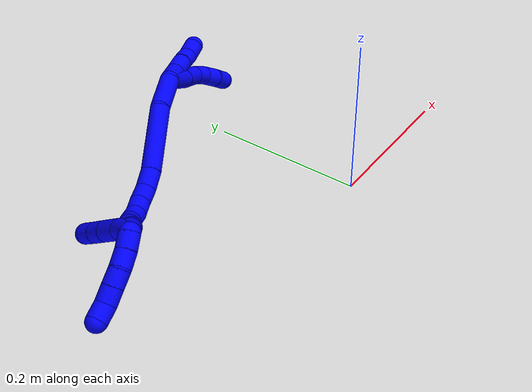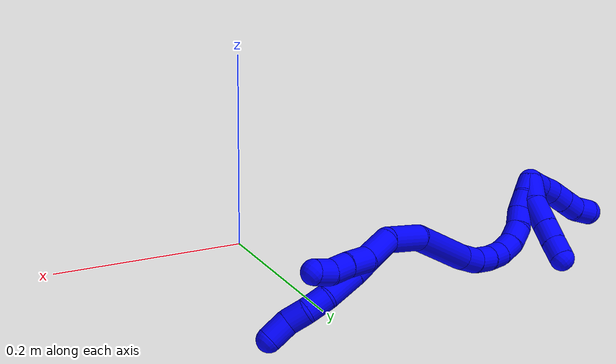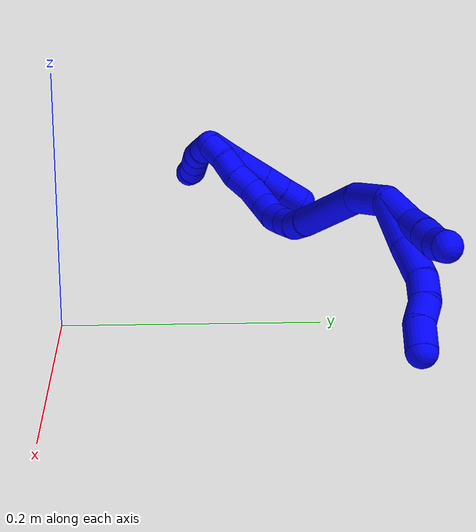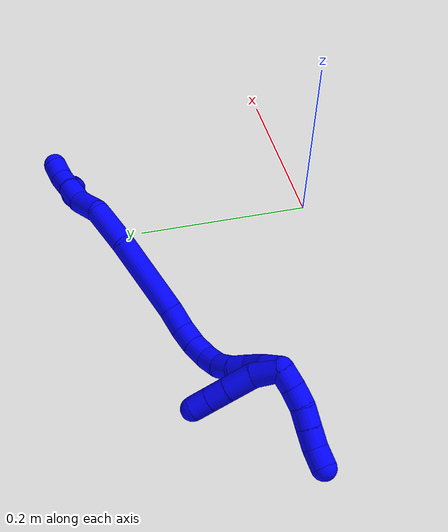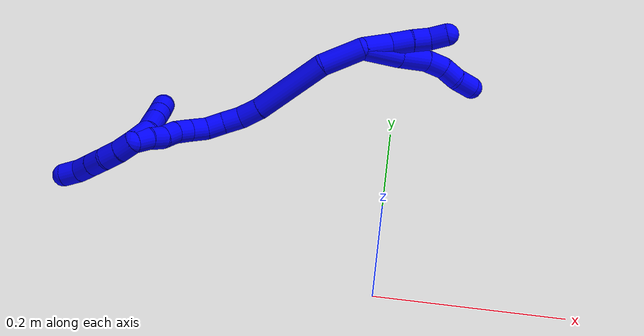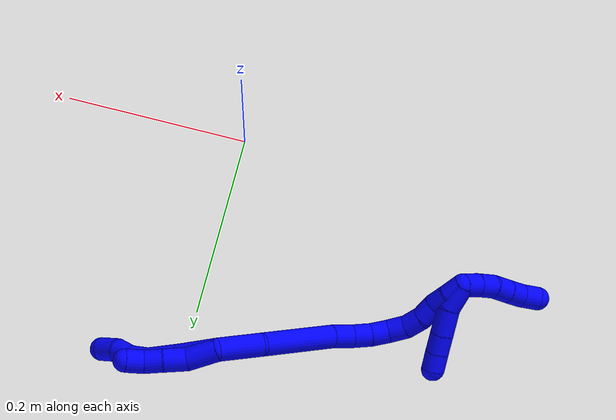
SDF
<sdf version="1.7">
 <world name="default">
  <model name="1">
   <static>0</static>
   <link name="1">
    <collision name="collision-cylinder-e_1_2_8">
     <pose>0.002042 3e-05 -0.023886 -3.14032 0.085286 -3.11182</pose>
     <geometry><cylinder><radius>0.0125</radius><length>0.047945</length></cylinder></geometry>
     <surface>
      <friction><ode><mu>1.16</mu><mu2>1.16</mu2><slip1>0</slip1><slip2>0</slip2></ode></friction>
      <contact><ode><kp>1e+06</kp><kd>1</kd><max_vel>0</max_vel><min_depth>0.001</min_depth></ode></contact>
     </surface>
    </collision>
    <visual name="visual-cylinder-e_1_2_8">
     <pose>0.002042 3e-05 -0.023886 -3.14032 0.085286 -3.11182</pose>
     <geometry><cylinder><radius>0.0125</radius><length>0.047945</length></cylinder></geometry>
     <material><ambient>0 0 1 1</ambient></material>
    </visual>
    <collision name="collision-cylinder-e_2_8_9">
     <pose>0.007211 -0.000536 -0.065163 3.10732 0.177765 2.76166</pose>
     <geometry><cylinder><radius>0.0125</radius><length>0.035362</length></cylinder></geometry>
     <surface>
      <friction><ode><mu>1.16</mu><mu2>1.16</mu2><slip1>0</slip1><slip2>0</slip2></ode></friction>
      <contact><ode><kp>1e+06</kp><kd>1</kd><max_vel>0</max_vel><min_depth>0.001</min_depth></ode></contact>
     </surface>
    </collision>
    <visual name="visual-cylinder-e_2_8_9">
     <pose>0.007211 -0.000536 -0.065163 3.10732 0.177765 2.76166</pose>
     <geometry><cylinder><radius>0.0125</radius><length>0.035362</length></cylinder></geometry>
     <material><ambient>0 0 1 1</ambient></material>
    </visual>
    <collision name="collision-cylinder-e_3_9_10">
     <pose>0.010529 -0.003783 -0.093695 2.90795 0.016764 0.142611</pose>
     <geometry><cylinder><radius>0.0125</radius><length>0.022905</length></cylinder></geometry>
     <surface>
      <friction><ode><mu>1.16</mu><mu2>1.16</mu2><slip1>0</slip1><slip2>0</slip2></ode></friction>
      <contact><ode><kp>1e+06</kp><kd>1</kd><max_vel>0</max_vel><min_depth>0.001</min_depth></ode></contact>
     </surface>
    </collision>
    <visual name="visual-cylinder-e_3_9_10">
     <pose>0.010529 -0.003783 -0.093695 2.90795 0.016764 0.142611</pose>
     <geometry><cylinder><radius>0.0125</radius><length>0.022905</length></cylinder></geometry>
     <material><ambient>0 0 1 1</ambient></material>
    </visual>
    <collision name="collision-cylinder-e_4_10_11">
     <pose>0.008613 -0.01085 -0.113751 2.68173 -0.208812 -0.841828</pose>
     <geometry><cylinder><radius>0.0125</radius><length>0.020341</length></cylinder></geometry>
     <surface>
      <friction><ode><mu>1.16</mu><mu2>1.16</mu2><slip1>0</slip1><slip2>0</slip2></ode></friction>
      <contact><ode><kp>1e+06</kp><kd>1</kd><max_vel>0</max_vel><min_depth>0.001</min_depth></ode></contact>
     </surface>
    </collision>
    <visual name="visual-cylinder-e_4_10_11">
     <pose>0.008613 -0.01085 -0.113751 2.68173 -0.208812 -0.841828</pose>
     <geometry><cylinder><radius>0.0125</radius><length>0.020341</length></cylinder></geometry>
     <material><ambient>0 0 1 1</ambient></material>
    </visual>
    <collision name="collision-cylinder-e_5_11_6">
     <pose>0.005011 -0.016979 -0.134168 2.99375 -0.127753 -1.4248</pose>
     <geometry><cylinder><radius>0.0125</radius><length>0.023447</length></cylinder></geometry>
     <surface>
      <friction><ode><mu>1.16</mu><mu2>1.16</mu2><slip1>0</slip1><slip2>0</slip2></ode></friction>
      <contact><ode><kp>1e+06</kp><kd>1</kd><max_vel>0</max_vel><min_depth>0.001</min_depth></ode></contact>
     </surface>
    </collision>
    <visual name="visual-cylinder-e_5_11_6">
     <pose>0.005011 -0.016979 -0.134168 2.99375 -0.127753 -1.4248</pose>
     <geometry><cylinder><radius>0.0125</radius><length>0.023447</length></cylinder></geometry>
     <material><ambient>0 0 1 1</ambient></material>
    </visual>
    <collision name="collision-cylinder-e_1_2_12">
     <pose>0.00634 0.002098 -0.015583 -3.00778 0.383298 -2.47655</pose>
     <geometry><cylinder><radius>0.0125</radius><length>0.033907</length></cylinder></geometry>
     <surface>
      <friction><ode><mu>1.16</mu><mu2>1.16</mu2><slip1>0</slip1><slip2>0</slip2></ode></friction>
      <contact><ode><kp>1e+06</kp><kd>1</kd><max_vel>0</max_vel><min_depth>0.001</min_depth></ode></contact>
     </surface>
    </collision>
    <visual name="visual-cylinder-e_1_2_12">
     <pose>0.00634 0.002098 -0.015583 -3.00778 0.383298 -2.47655</pose>
     <geometry><cylinder><radius>0.0125</radius><length>0.033907</length></cylinder></geometry>
     <material><ambient>0 0 1 1</ambient></material>
    </visual>
    <collision name="collision-cylinder-e_2_12_13">
     <pose>0.019915 0.002518 -0.041512 2.98087 0.604143 2.63575</pose>
     <geometry><cylinder><radius>0.0125</radius><length>0.025472</length></cylinder></geometry>
     <surface>
      <friction><ode><mu>1.16</mu><mu2>1.16</mu2><slip1>0</slip1><slip2>0</slip2></ode></friction>
      <contact><ode><kp>1e+06</kp><kd>1</kd><max_vel>0</max_vel><min_depth>0.001</min_depth></ode></contact>
     </surface>
    </collision>
    <visual name="visual-cylinder-e_2_12_13">
     <pose>0.019915 0.002518 -0.041512 2.98087 0.604143 2.63575</pose>
     <geometry><cylinder><radius>0.0125</radius><length>0.025472</length></cylinder></geometry>
     <material><ambient>0 0 1 1</ambient></material>
    </visual>
    <collision name="collision-cylinder-e_3_13_14">
     <pose>0.032011 -0.000357 -0.060675 3.00654 0.499991 2.62376</pose>
     <geometry><cylinder><radius>0.0125</radius><length>0.020278</length></cylinder></geometry>
     <surface>
      <friction><ode><mu>1.16</mu><mu2>1.16</mu2><slip1>0</slip1><slip2>0</slip2></ode></friction>
      <contact><ode><kp>1e+06</kp><kd>1</kd><max_vel>0</max_vel><min_depth>0.001</min_depth></ode></contact>
     </surface>
    </collision>
    <visual name="visual-cylinder-e_3_13_14">
     <pose>0.032011 -0.000357 -0.060675 3.00654 0.499991 2.62376</pose>
     <geometry><cylinder><radius>0.0125</radius><length>0.020278</length></cylinder></geometry>
     <material><ambient>0 0 1 1</ambient></material>
    </visual>
    <collision name="collision-cylinder-e_4_14_5">
     <pose>0.043923 -0.004221 -0.076321 2.7695 0.765962 2.26747</pose>
     <geometry><cylinder><radius>0.0125</radius><length>0.020343</length></cylinder></geometry>
     <surface>
      <friction><ode><mu>1.16</mu><mu2>1.16</mu2><slip1>0</slip1><slip2>0</slip2></ode></friction>
      <contact><ode><kp>1e+06</kp><kd>1</kd><max_vel>0</max_vel><min_depth>0.001</min_depth></ode></contact>
     </surface>
    </collision>
    <visual name="visual-cylinder-e_4_14_5">
     <pose>0.043923 -0.004221 -0.076321 2.7695 0.765962 2.26747</pose>
     <geometry><cylinder><radius>0.0125</radius><length>0.020343</length></cylinder></geometry>
     <material><ambient>0 0 1 1</ambient></material>
    </visual>
    <collision name="collision-cylinder-e_1_2_15">
     <pose>-0.017814 0.00214 0.015903 -0.133765 -0.837577 0.059613</pose>
     <geometry><cylinder><radius>0.0125</radius><length>0.047951</length></cylinder></geometry>
     <surface>
      <friction><ode><mu>1.16</mu><mu2>1.16</mu2><slip1>0</slip1><slip2>0</slip2></ode></friction>
      <contact><ode><kp>1e+06</kp><kd>1</kd><max_vel>0</max_vel><min_depth>0.001</min_depth></ode></contact>
     </surface>
    </collision>
    <visual name="visual-cylinder-e_1_2_15">
     <pose>-0.017814 0.00214 0.015903 -0.133765 -0.837577 0.059613</pose>
     <geometry><cylinder><radius>0.0125</radius><length>0.047951</length></cylinder></geometry>
     <material><ambient>0 0 1 1</ambient></material>
    </visual>
    <collision name="collision-cylinder-e_2_15_16">
     <pose>-0.074821 0.008516 0.049789 -0.231329 -1.13028 0.147085</pose>
     <geometry><cylinder><radius>0.0125</radius><length>0.086659</length></cylinder></geometry>
     <surface>
      <friction><ode><mu>1.16</mu><mu2>1.16</mu2><slip1>0</slip1><slip2>0</slip2></ode></friction>
      <contact><ode><kp>1e+06</kp><kd>1</kd><max_vel>0</max_vel><min_depth>0.001</min_depth></ode></contact>
     </surface>
    </collision>
    <visual name="visual-cylinder-e_2_15_16">
     <pose>-0.074821 0.008516 0.049789 -0.231329 -1.13028 0.147085</pose>
     <geometry><cylinder><radius>0.0125</radius><length>0.086659</length></cylinder></geometry>
     <material><ambient>0 0 1 1</ambient></material>
    </visual>
    <collision name="collision-cylinder-e_3_16_17">
     <pose>-0.124357 0.015048 0.074062 -0.350027 -0.996305 0.19176</pose>
     <geometry><cylinder><radius>0.0125</radius><length>0.024643</length></cylinder></geometry>
     <surface>
      <friction><ode><mu>1.16</mu><mu2>1.16</mu2><slip1>0</slip1><slip2>0</slip2></ode></friction>
      <contact><ode><kp>1e+06</kp><kd>1</kd><max_vel>0</max_vel><min_depth>0.001</min_depth></ode></contact>
     </surface>
    </collision>
    <visual name="visual-cylinder-e_3_16_17">
     <pose>-0.124357 0.015048 0.074062 -0.350027 -0.996305 0.19176</pose>
     <geometry><cylinder><radius>0.0125</radius><length>0.024643</length></cylinder></geometry>
     <material><ambient>0 0 1 1</ambient></material>
    </visual>
    <collision name="collision-cylinder-e_4_17_18">
     <pose>-0.141784 0.018638 0.087796 -0.172157 -0.753153 0.068221</pose>
     <geometry><cylinder><radius>0.0125</radius><length>0.020713</length></cylinder></geometry>
     <surface>
      <friction><ode><mu>1.16</mu><mu2>1.16</mu2><slip1>0</slip1><slip2>0</slip2></ode></friction>
      <contact><ode><kp>1e+06</kp><kd>1</kd><max_vel>0</max_vel><min_depth>0.001</min_depth></ode></contact>
     </surface>
    </collision>
    <visual name="visual-cylinder-e_4_17_18">
     <pose>-0.141784 0.018638 0.087796 -0.172157 -0.753153 0.068221</pose>
     <geometry><cylinder><radius>0.0125</radius><length>0.020713</length></cylinder></geometry>
     <material><ambient>0 0 1 1</ambient></material>
    </visual>
    <collision name="collision-cylinder-e_5_18_19">
     <pose>-0.15521 0.019905 0.102975 0.003534 -0.686801 -0.001264</pose>
     <geometry><cylinder><radius>0.0125</radius><length>0.020006</length></cylinder></geometry>
     <surface>
      <friction><ode><mu>1.16</mu><mu2>1.16</mu2><slip1>0</slip1><slip2>0</slip2></ode></friction>
      <contact><ode><kp>1e+06</kp><kd>1</kd><max_vel>0</max_vel><min_depth>0.001</min_depth></ode></contact>
     </surface>
    </collision>
    <visual name="visual-cylinder-e_5_18_19">
     <pose>-0.15521 0.019905 0.102975 0.003534 -0.686801 -0.001264</pose>
     <geometry><cylinder><radius>0.0125</radius><length>0.020006</length></cylinder></geometry>
     <material><ambient>0 0 1 1</ambient></material>
    </visual>
    <collision name="collision-cylinder-e_6_19_20">
     <pose>-0.164941 0.019094 0.120089 0.083378 -0.345583 -0.01456</pose>
     <geometry><cylinder><radius>0.0125</radius><length>0.020007</length></cylinder></geometry>
     <surface>
      <friction><ode><mu>1.16</mu><mu2>1.16</mu2><slip1>0</slip1><slip2>0</slip2></ode></friction>
      <contact><ode><kp>1e+06</kp><kd>1</kd><max_vel>0</max_vel><min_depth>0.001</min_depth></ode></contact>
     </surface>
    </collision>
    <visual name="visual-cylinder-e_6_19_20">
     <pose>-0.164941 0.019094 0.120089 0.083378 -0.345583 -0.01456</pose>
     <geometry><cylinder><radius>0.0125</radius><length>0.020007</length></cylinder></geometry>
     <material><ambient>0 0 1 1</ambient></material>
    </visual>
    <collision name="collision-cylinder-e_7_20_21">
     <pose>-0.169798 0.014988 0.138794 0.342234 -0.14721 -0.025484</pose>
     <geometry><cylinder><radius>0.0125</radius><length>0.020015</length></cylinder></geometry>
     <surface>
      <friction><ode><mu>1.16</mu><mu2>1.16</mu2><slip1>0</slip1><slip2>0</slip2></ode></friction>
      <contact><ode><kp>1e+06</kp><kd>1</kd><max_vel>0</max_vel><min_depth>0.001</min_depth></ode></contact>
     </surface>
    </collision>
    <visual name="visual-cylinder-e_7_20_21">
     <pose>-0.169798 0.014988 0.138794 0.342234 -0.14721 -0.025484</pose>
     <geometry><cylinder><radius>0.0125</radius><length>0.020015</length></cylinder></geometry>
     <material><ambient>0 0 1 1</ambient></material>
    </visual>
    <collision name="collision-cylinder-e_8_21_22">
     <pose>-0.172698 0.005953 0.156201 0.615393 -0.143774 -0.045761</pose>
     <geometry><cylinder><radius>0.0125</radius><length>0.020001</length></cylinder></geometry>
     <surface>
      <friction><ode><mu>1.16</mu><mu2>1.16</mu2><slip1>0</slip1><slip2>0</slip2></ode></friction>
      <contact><ode><kp>1e+06</kp><kd>1</kd><max_vel>0</max_vel><min_depth>0.001</min_depth></ode></contact>
     </surface>
    </collision>
    <visual name="visual-cylinder-e_8_21_22">
     <pose>-0.172698 0.005953 0.156201 0.615393 -0.143774 -0.045761</pose>
     <geometry><cylinder><radius>0.0125</radius><length>0.020001</length></cylinder></geometry>
     <material><ambient>0 0 1 1</ambient></material>
    </visual>
    <collision name="collision-cylinder-e_9_22_23">
     <pose>-0.174112 -0.003608 0.173513 0.394861 0.001939 0.000388</pose>
     <geometry><cylinder><radius>0.0125</radius><length>0.020001</length></cylinder></geometry>
     <surface>
      <friction><ode><mu>1.16</mu><mu2>1.16</mu2><slip1>0</slip1><slip2>0</slip2></ode></friction>
      <contact><ode><kp>1e+06</kp><kd>1</kd><max_vel>0</max_vel><min_depth>0.001</min_depth></ode></contact>
     </surface>
    </collision>
    <visual name="visual-cylinder-e_9_22_23">
     <pose>-0.174112 -0.003608 0.173513 0.394861 0.001939 0.000388</pose>
     <geometry><cylinder><radius>0.0125</radius><length>0.020001</length></cylinder></geometry>
     <material><ambient>0 0 1 1</ambient></material>
    </visual>
    <collision name="collision-cylinder-e_10_23_1">
     <pose>-0.175857 -0.01164 0.191656 0.439023 -0.177383 -0.039674</pose>
     <geometry><cylinder><radius>0.0125</radius><length>0.020005</length></cylinder></geometry>
     <surface>
      <friction><ode><mu>1.16</mu><mu2>1.16</mu2><slip1>0</slip1><slip2>0</slip2></ode></friction>
      <contact><ode><kp>1e+06</kp><kd>1</kd><max_vel>0</max_vel><min_depth>0.001</min_depth></ode></contact>
     </surface>
    </collision>
    <visual name="visual-cylinder-e_10_23_1">
     <pose>-0.175857 -0.01164 0.191656 0.439023 -0.177383 -0.039674</pose>
     <geometry><cylinder><radius>0.0125</radius><length>0.020005</length></cylinder></geometry>
     <material><ambient>0 0 1 1</ambient></material>
    </visual>
    <collision name="collision-cylinder-e_1_1_24">
     <pose>-0.186671 -0.014124 0.20447 -0.410867 -1.13106 0.262975</pose>
     <geometry><cylinder><radius>0.0125</radius><length>0.02</length></cylinder></geometry>
     <surface>
      <friction><ode><mu>1.16</mu><mu2>1.16</mu2><slip1>0</slip1><slip2>0</slip2></ode></friction>
      <contact><ode><kp>1e+06</kp><kd>1</kd><max_vel>0</max_vel><min_depth>0.001</min_depth></ode></contact>
     </surface>
    </collision>
    <visual name="visual-cylinder-e_1_1_24">
     <pose>-0.186671 -0.014124 0.20447 -0.410867 -1.13106 0.262975</pose>
     <geometry><cylinder><radius>0.0125</radius><length>0.02</length></cylinder></geometry>
     <material><ambient>0 0 1 1</ambient></material>
    </visual>
    <collision name="collision-cylinder-e_2_24_25">
     <pose>-0.204302 -0.009804 0.212786 -0.535812 -1.0318 0.308881</pose>
     <geometry><cylinder><radius>0.0125</radius><length>0.02</length></cylinder></geometry>
     <surface>
      <friction><ode><mu>1.16</mu><mu2>1.16</mu2><slip1>0</slip1><slip2>0</slip2></ode></friction>
      <contact><ode><kp>1e+06</kp><kd>1</kd><max_vel>0</max_vel><min_depth>0.001</min_depth></ode></contact>
     </surface>
    </collision>
    <visual name="visual-cylinder-e_2_24_25">
     <pose>-0.204302 -0.009804 0.212786 -0.535812 -1.0318 0.308881</pose>
     <geometry><cylinder><radius>0.0125</radius><length>0.02</length></cylinder></geometry>
     <material><ambient>0 0 1 1</ambient></material>
    </visual>
    <collision name="collision-cylinder-e_3_25_26">
     <pose>-0.221451 -0.003033 0.220264 -0.934836 -1.02872 0.555681</pose>
     <geometry><cylinder><radius>0.0125</radius><length>0.02</length></cylinder></geometry>
     <surface>
      <friction><ode><mu>1.16</mu><mu2>1.16</mu2><slip1>0</slip1><slip2>0</slip2></ode></friction>
      <contact><ode><kp>1e+06</kp><kd>1</kd><max_vel>0</max_vel><min_depth>0.001</min_depth></ode></contact>
     </surface>
    </collision>
    <visual name="visual-cylinder-e_3_25_26">
     <pose>-0.221451 -0.003033 0.220264 -0.934836 -1.02872 0.555681</pose>
     <geometry><cylinder><radius>0.0125</radius><length>0.02</length></cylinder></geometry>
     <material><ambient>0 0 1 1</ambient></material>
    </visual>
    <collision name="collision-cylinder-e_4_26_27">
     <pose>-0.238608 0.005174 0.22645 -0.914918 -1.03346 0.545517</pose>
     <geometry><cylinder><radius>0.0125</radius><length>0.02</length></cylinder></geometry>
     <surface>
      <friction><ode><mu>1.16</mu><mu2>1.16</mu2><slip1>0</slip1><slip2>0</slip2></ode></friction>
      <contact><ode><kp>1e+06</kp><kd>1</kd><max_vel>0</max_vel><min_depth>0.001</min_depth></ode></contact>
     </surface>
    </collision>
    <visual name="visual-cylinder-e_4_26_27">
     <pose>-0.238608 0.005174 0.22645 -0.914918 -1.03346 0.545517</pose>
     <geometry><cylinder><radius>0.0125</radius><length>0.02</length></cylinder></geometry>
     <material><ambient>0 0 1 1</ambient></material>
    </visual>
    <collision name="collision-cylinder-e_5_27_4">
     <pose>-0.254698 0.012707 0.235199 -0.553238 -0.848017 0.254907</pose>
     <geometry><cylinder><radius>0.0125</radius><length>0.02</length></cylinder></geometry>
     <surface>
      <friction><ode><mu>1.16</mu><mu2>1.16</mu2><slip1>0</slip1><slip2>0</slip2></ode></friction>
      <contact><ode><kp>1e+06</kp><kd>1</kd><max_vel>0</max_vel><min_depth>0.001</min_depth></ode></contact>
     </surface>
    </collision>
    <visual name="visual-cylinder-e_5_27_4">
     <pose>-0.254698 0.012707 0.235199 -0.553238 -0.848017 0.254907</pose>
     <geometry><cylinder><radius>0.0125</radius><length>0.02</length></cylinder></geometry>
     <material><ambient>0 0 1 1</ambient></material>
    </visual>
    <collision name="collision-cylinder-e_1_1_28">
     <pose>-0.175608 -0.005243 0.190799 -2.31625 0.139001 -0.315365</pose>
     <geometry><cylinder><radius>0.0125</radius><length>0.029081</length></cylinder></geometry>
     <surface>
      <friction><ode><mu>1.16</mu><mu2>1.16</mu2><slip1>0</slip1><slip2>0</slip2></ode></friction>
      <contact><ode><kp>1e+06</kp><kd>1</kd><max_vel>0</max_vel><min_depth>0.001</min_depth></ode></contact>
     </surface>
    </collision>
    <visual name="visual-cylinder-e_1_1_28">
     <pose>-0.175608 -0.005243 0.190799 -2.31625 0.139001 -0.315365</pose>
     <geometry><cylinder><radius>0.0125</radius><length>0.029081</length></cylinder></geometry>
     <material><ambient>0 0 1 1</ambient></material>
    </visual>
    <collision name="collision-cylinder-e_2_28_29">
     <pose>-0.173862 0.018293 0.174083 -2.06312 -0.018274 0.030538</pose>
     <geometry><cylinder><radius>0.0125</radius><length>0.029407</length></cylinder></geometry>
     <surface>
      <friction><ode><mu>1.16</mu><mu2>1.16</mu2><slip1>0</slip1><slip2>0</slip2></ode></friction>
      <contact><ode><kp>1e+06</kp><kd>1</kd><max_vel>0</max_vel><min_depth>0.001</min_depth></ode></contact>
     </surface>
    </collision>
    <visual name="visual-cylinder-e_2_28_29">
     <pose>-0.173862 0.018293 0.174083 -2.06312 -0.018274 0.030538</pose>
     <geometry><cylinder><radius>0.0125</radius><length>0.029407</length></cylinder></geometry>
     <material><ambient>0 0 1 1</ambient></material>
    </visual>
    <collision name="collision-cylinder-e_3_29_30">
     <pose>-0.174429 0.040644 0.161945 -2.07534 -0.027777 0.047064</pose>
     <geometry><cylinder><radius>0.0125</radius><length>0.021476</length></cylinder></geometry>
     <surface>
      <friction><ode><mu>1.16</mu><mu2>1.16</mu2><slip1>0</slip1><slip2>0</slip2></ode></friction>
      <contact><ode><kp>1e+06</kp><kd>1</kd><max_vel>0</max_vel><min_depth>0.001</min_depth></ode></contact>
     </surface>
    </collision>
    <visual name="visual-cylinder-e_3_29_30">
     <pose>-0.174429 0.040644 0.161945 -2.07534 -0.027777 0.047064</pose>
     <geometry><cylinder><radius>0.0125</radius><length>0.021476</length></cylinder></geometry>
     <material><ambient>0 0 1 1</ambient></material>
    </visual>
    <collision name="collision-cylinder-e_4_30_3">
     <pose>-0.174814 0.058942 0.152162 -2.04722 -0.008679 0.014245</pose>
     <geometry><cylinder><radius>0.0125</radius><length>0.020036</length></cylinder></geometry>
     <surface>
      <friction><ode><mu>1.16</mu><mu2>1.16</mu2><slip1>0</slip1><slip2>0</slip2></ode></friction>
      <contact><ode><kp>1e+06</kp><kd>1</kd><max_vel>0</max_vel><min_depth>0.001</min_depth></ode></contact>
     </surface>
    </collision>
    <visual name="visual-cylinder-e_4_30_3">
     <pose>-0.174814 0.058942 0.152162 -2.04722 -0.008679 0.014245</pose>
     <geometry><cylinder><radius>0.0125</radius><length>0.020036</length></cylinder></geometry>
     <material><ambient>0 0 1 1</ambient></material>
    </visual>
    <collision name="collision-sphere-3">
     <pose>-0.174901 0.067844 0.147568 0 -0 0</pose>
     <geometry><sphere><radius>0.0125</radius></sphere></geometry>
     <surface>
      <friction><ode><mu>1.16</mu><mu2>1.16</mu2><slip1>0</slip1><slip2>0</slip2></ode></friction>
      <contact><ode><kp>1e+06</kp><kd>1</kd><max_vel>0</max_vel><min_depth>0.001</min_depth></ode></contact>
     </surface>
    </collision>
    <visual name="visual-sphere-3">
     <pose>-0.174901 0.067844 0.147568 0 -0 0</pose>
     <geometry><sphere><radius>0.0125</radius></sphere></geometry>
     <material><ambient>0 0 1 1</ambient></material>
    </visual>
    <collision name="collision-sphere-30">
     <pose>-0.174727 0.05004 0.156756 0 -0 0</pose>
     <geometry><sphere><radius>0.0125</radius></sphere></geometry>
     <surface>
      <friction><ode><mu>1.16</mu><mu2>1.16</mu2><slip1>0</slip1><slip2>0</slip2></ode></friction>
      <contact><ode><kp>1e+06</kp><kd>1</kd><max_vel>0</max_vel><min_depth>0.001</min_depth></ode></contact>
     </surface>
    </collision>
    <visual name="visual-sphere-30">
     <pose>-0.174727 0.05004 0.156756 0 -0 0</pose>
     <geometry><sphere><radius>0.0125</radius></sphere></geometry>
     <material><ambient>0 0 1 1</ambient></material>
    </visual>
    <collision name="collision-sphere-29">
     <pose>-0.17413 0.031248 0.167134 0 -0 0</pose>
     <geometry><sphere><radius>0.0125</radius></sphere></geometry>
     <surface>
      <friction><ode><mu>1.16</mu><mu2>1.16</mu2><slip1>0</slip1><slip2>0</slip2></ode></friction>
      <contact><ode><kp>1e+06</kp><kd>1</kd><max_vel>0</max_vel><min_depth>0.001</min_depth></ode></contact>
     </surface>
    </collision>
    <visual name="visual-sphere-29">
     <pose>-0.17413 0.031248 0.167134 0 -0 0</pose>
     <geometry><sphere><radius>0.0125</radius></sphere></geometry>
     <material><ambient>0 0 1 1</ambient></material>
    </visual>
    <collision name="collision-sphere-28">
     <pose>-0.173593 0.005338 0.181031 0 -0 0</pose>
     <geometry><sphere><radius>0.0125</radius></sphere></geometry>
     <surface>
      <friction><ode><mu>1.16</mu><mu2>1.16</mu2><slip1>0</slip1><slip2>0</slip2></ode></friction>
      <contact><ode><kp>1e+06</kp><kd>1</kd><max_vel>0</max_vel><min_depth>0.001</min_depth></ode></contact>
     </surface>
    </collision>
    <visual name="visual-sphere-28">
     <pose>-0.173593 0.005338 0.181031 0 -0 0</pose>
     <geometry><sphere><radius>0.0125</radius></sphere></geometry>
     <material><ambient>0 0 1 1</ambient></material>
    </visual>
    <collision name="collision-sphere-4">
     <pose>-0.262198 0.016182 0.240827 0 -0 0</pose>
     <geometry><sphere><radius>0.0125</radius></sphere></geometry>
     <surface>
      <friction><ode><mu>1.16</mu><mu2>1.16</mu2><slip1>0</slip1><slip2>0</slip2></ode></friction>
      <contact><ode><kp>1e+06</kp><kd>1</kd><max_vel>0</max_vel><min_depth>0.001</min_depth></ode></contact>
     </surface>
    </collision>
    <visual name="visual-sphere-4">
     <pose>-0.262198 0.016182 0.240827 0 -0 0</pose>
     <geometry><sphere><radius>0.0125</radius></sphere></geometry>
     <material><ambient>0 0 1 1</ambient></material>
    </visual>
    <collision name="collision-sphere-27">
     <pose>-0.247198 0.009231 0.229571 0 -0 0</pose>
     <geometry><sphere><radius>0.0125</radius></sphere></geometry>
     <surface>
      <friction><ode><mu>1.16</mu><mu2>1.16</mu2><slip1>0</slip1><slip2>0</slip2></ode></friction>
      <contact><ode><kp>1e+06</kp><kd>1</kd><max_vel>0</max_vel><min_depth>0.001</min_depth></ode></contact>
     </surface>
    </collision>
    <visual name="visual-sphere-27">
     <pose>-0.247198 0.009231 0.229571 0 -0 0</pose>
     <geometry><sphere><radius>0.0125</radius></sphere></geometry>
     <material><ambient>0 0 1 1</ambient></material>
    </visual>
    <collision name="collision-sphere-26">
     <pose>-0.230017 0.001118 0.223328 0 -0 0</pose>
     <geometry><sphere><radius>0.0125</radius></sphere></geometry>
     <surface>
      <friction><ode><mu>1.16</mu><mu2>1.16</mu2><slip1>0</slip1><slip2>0</slip2></ode></friction>
      <contact><ode><kp>1e+06</kp><kd>1</kd><max_vel>0</max_vel><min_depth>0.001</min_depth></ode></contact>
     </surface>
    </collision>
    <visual name="visual-sphere-26">
     <pose>-0.230017 0.001118 0.223328 0 -0 0</pose>
     <geometry><sphere><radius>0.0125</radius></sphere></geometry>
     <material><ambient>0 0 1 1</ambient></material>
    </visual>
    <collision name="collision-sphere-25">
     <pose>-0.212884 -0.007183 0.2172 0 -0 0</pose>
     <geometry><sphere><radius>0.0125</radius></sphere></geometry>
     <surface>
      <friction><ode><mu>1.16</mu><mu2>1.16</mu2><slip1>0</slip1><slip2>0</slip2></ode></friction>
      <contact><ode><kp>1e+06</kp><kd>1</kd><max_vel>0</max_vel><min_depth>0.001</min_depth></ode></contact>
     </surface>
    </collision>
    <visual name="visual-sphere-25">
     <pose>-0.212884 -0.007183 0.2172 0 -0 0</pose>
     <geometry><sphere><radius>0.0125</radius></sphere></geometry>
     <material><ambient>0 0 1 1</ambient></material>
    </visual>
    <collision name="collision-sphere-24">
     <pose>-0.19572 -0.012424 0.208373 0 -0 0</pose>
     <geometry><sphere><radius>0.0125</radius></sphere></geometry>
     <surface>
      <friction><ode><mu>1.16</mu><mu2>1.16</mu2><slip1>0</slip1><slip2>0</slip2></ode></friction>
      <contact><ode><kp>1e+06</kp><kd>1</kd><max_vel>0</max_vel><min_depth>0.001</min_depth></ode></contact>
     </surface>
    </collision>
    <visual name="visual-sphere-24">
     <pose>-0.19572 -0.012424 0.208373 0 -0 0</pose>
     <geometry><sphere><radius>0.0125</radius></sphere></geometry>
     <material><ambient>0 0 1 1</ambient></material>
    </visual>
    <collision name="collision-sphere-1">
     <pose>-0.177622 -0.015825 0.200567 0 -0 0</pose>
     <geometry><sphere><radius>0.0125</radius></sphere></geometry>
     <surface>
      <friction><ode><mu>1.16</mu><mu2>1.16</mu2><slip1>0</slip1><slip2>0</slip2></ode></friction>
      <contact><ode><kp>1e+06</kp><kd>1</kd><max_vel>0</max_vel><min_depth>0.001</min_depth></ode></contact>
     </surface>
    </collision>
    <visual name="visual-sphere-1">
     <pose>-0.177622 -0.015825 0.200567 0 -0 0</pose>
     <geometry><sphere><radius>0.0125</radius></sphere></geometry>
     <material><ambient>0 0 1 1</ambient></material>
    </visual>
    <collision name="collision-sphere-23">
     <pose>-0.174092 -0.007455 0.182744 0 -0 0</pose>
     <geometry><sphere><radius>0.0125</radius></sphere></geometry>
     <surface>
      <friction><ode><mu>1.16</mu><mu2>1.16</mu2><slip1>0</slip1><slip2>0</slip2></ode></friction>
      <contact><ode><kp>1e+06</kp><kd>1</kd><max_vel>0</max_vel><min_depth>0.001</min_depth></ode></contact>
     </surface>
    </collision>
    <visual name="visual-sphere-23">
     <pose>-0.174092 -0.007455 0.182744 0 -0 0</pose>
     <geometry><sphere><radius>0.0125</radius></sphere></geometry>
     <material><ambient>0 0 1 1</ambient></material>
    </visual>
    <collision name="collision-sphere-22">
     <pose>-0.174131 0.000239 0.164282 0 -0 0</pose>
     <geometry><sphere><radius>0.0125</radius></sphere></geometry>
     <surface>
      <friction><ode><mu>1.16</mu><mu2>1.16</mu2><slip1>0</slip1><slip2>0</slip2></ode></friction>
      <contact><ode><kp>1e+06</kp><kd>1</kd><max_vel>0</max_vel><min_depth>0.001</min_depth></ode></contact>
     </surface>
    </collision>
    <visual name="visual-sphere-22">
     <pose>-0.174131 0.000239 0.164282 0 -0 0</pose>
     <geometry><sphere><radius>0.0125</radius></sphere></geometry>
     <material><ambient>0 0 1 1</ambient></material>
    </visual>
    <collision name="collision-sphere-21">
     <pose>-0.171265 0.011666 0.148119 0 -0 0</pose>
     <geometry><sphere><radius>0.0125</radius></sphere></geometry>
     <surface>
      <friction><ode><mu>1.16</mu><mu2>1.16</mu2><slip1>0</slip1><slip2>0</slip2></ode></friction>
      <contact><ode><kp>1e+06</kp><kd>1</kd><max_vel>0</max_vel><min_depth>0.001</min_depth></ode></contact>
     </surface>
    </collision>
    <visual name="visual-sphere-21">
     <pose>-0.171265 0.011666 0.148119 0 -0 0</pose>
     <geometry><sphere><radius>0.0125</radius></sphere></geometry>
     <material><ambient>0 0 1 1</ambient></material>
    </visual>
    <collision name="collision-sphere-6">
     <pose>0.003517 -0.018691 -0.145669 0 -0 0</pose>
     <geometry><sphere><radius>0.0125</radius></sphere></geometry>
     <surface>
      <friction><ode><mu>1.16</mu><mu2>1.16</mu2><slip1>0</slip1><slip2>0</slip2></ode></friction>
      <contact><ode><kp>1e+06</kp><kd>1</kd><max_vel>0</max_vel><min_depth>0.001</min_depth></ode></contact>
     </surface>
    </collision>
    <visual name="visual-sphere-6">
     <pose>0.003517 -0.018691 -0.145669 0 -0 0</pose>
     <geometry><sphere><radius>0.0125</radius></sphere></geometry>
     <material><ambient>0 0 1 1</ambient></material>
    </visual>
    <collision name="collision-sphere-11">
     <pose>0.006505 -0.015266 -0.122666 0 -0 0</pose>
     <geometry><sphere><radius>0.0125</radius></sphere></geometry>
     <surface>
      <friction><ode><mu>1.16</mu><mu2>1.16</mu2><slip1>0</slip1><slip2>0</slip2></ode></friction>
      <contact><ode><kp>1e+06</kp><kd>1</kd><max_vel>0</max_vel><min_depth>0.001</min_depth></ode></contact>
     </surface>
    </collision>
    <visual name="visual-sphere-11">
     <pose>0.006505 -0.015266 -0.122666 0 -0 0</pose>
     <geometry><sphere><radius>0.0125</radius></sphere></geometry>
     <material><ambient>0 0 1 1</ambient></material>
    </visual>
    <collision name="collision-sphere-10">
     <pose>0.010721 -0.006434 -0.104835 0 -0 0</pose>
     <geometry><sphere><radius>0.0125</radius></sphere></geometry>
     <surface>
      <friction><ode><mu>1.16</mu><mu2>1.16</mu2><slip1>0</slip1><slip2>0</slip2></ode></friction>
      <contact><ode><kp>1e+06</kp><kd>1</kd><max_vel>0</max_vel><min_depth>0.001</min_depth></ode></contact>
     </surface>
    </collision>
    <visual name="visual-sphere-10">
     <pose>0.010721 -0.006434 -0.104835 0 -0 0</pose>
     <geometry><sphere><radius>0.0125</radius></sphere></geometry>
     <material><ambient>0 0 1 1</ambient></material>
    </visual>
    <collision name="collision-sphere-9">
     <pose>0.010337 -0.001132 -0.082555 0 -0 0</pose>
     <geometry><sphere><radius>0.0125</radius></sphere></geometry>
     <surface>
      <friction><ode><mu>1.16</mu><mu2>1.16</mu2><slip1>0</slip1><slip2>0</slip2></ode></friction>
      <contact><ode><kp>1e+06</kp><kd>1</kd><max_vel>0</max_vel><min_depth>0.001</min_depth></ode></contact>
     </surface>
    </collision>
    <visual name="visual-sphere-9">
     <pose>0.010337 -0.001132 -0.082555 0 -0 0</pose>
     <geometry><sphere><radius>0.0125</radius></sphere></geometry>
     <material><ambient>0 0 1 1</ambient></material>
    </visual>
    <collision name="collision-sphere-2">
     <geometry><sphere><radius>0.0125</radius></sphere></geometry>
     <surface>
      <friction><ode><mu>1.16</mu><mu2>1.16</mu2><slip1>0</slip1><slip2>0</slip2></ode></friction>
      <contact><ode><kp>1e+06</kp><kd>1</kd><max_vel>0</max_vel><min_depth>0.001</min_depth></ode></contact>
     </surface>
    </collision>
    <visual name="visual-sphere-2">
     <geometry><sphere><radius>0.0125</radius></sphere></geometry>
     <material><ambient>0 0 1 1</ambient></material>
    </visual>
    <collision name="collision-sphere-19">
     <pose>-0.161552 0.019878 0.11071 0 -0 0</pose>
     <geometry><sphere><radius>0.0125</radius></sphere></geometry>
     <surface>
      <friction><ode><mu>1.16</mu><mu2>1.16</mu2><slip1>0</slip1><slip2>0</slip2></ode></friction>
      <contact><ode><kp>1e+06</kp><kd>1</kd><max_vel>0</max_vel><min_depth>0.001</min_depth></ode></contact>
     </surface>
    </collision>
    <visual name="visual-sphere-19">
     <pose>-0.161552 0.019878 0.11071 0 -0 0</pose>
     <geometry><sphere><radius>0.0125</radius></sphere></geometry>
     <material><ambient>0 0 1 1</ambient></material>
    </visual>
    <collision name="collision-sphere-8">
     <pose>0.004084 6.1e-05 -0.047771 0 -0 0</pose>
     <geometry><sphere><radius>0.0125</radius></sphere></geometry>
     <surface>
      <friction><ode><mu>1.16</mu><mu2>1.16</mu2><slip1>0</slip1><slip2>0</slip2></ode></friction>
      <contact><ode><kp>1e+06</kp><kd>1</kd><max_vel>0</max_vel><min_depth>0.001</min_depth></ode></contact>
     </surface>
    </collision>
    <visual name="visual-sphere-8">
     <pose>0.004084 6.1e-05 -0.047771 0 -0 0</pose>
     <geometry><sphere><radius>0.0125</radius></sphere></geometry>
     <material><ambient>0 0 1 1</ambient></material>
    </visual>
    <collision name="collision-sphere-12">
     <pose>0.01268 0.004195 -0.031165 0 -0 0</pose>
     <geometry><sphere><radius>0.0125</radius></sphere></geometry>
     <surface>
      <friction><ode><mu>1.16</mu><mu2>1.16</mu2><slip1>0</slip1><slip2>0</slip2></ode></friction>
      <contact><ode><kp>1e+06</kp><kd>1</kd><max_vel>0</max_vel><min_depth>0.001</min_depth></ode></contact>
     </surface>
    </collision>
    <visual name="visual-sphere-12">
     <pose>0.01268 0.004195 -0.031165 0 -0 0</pose>
     <geometry><sphere><radius>0.0125</radius></sphere></geometry>
     <material><ambient>0 0 1 1</ambient></material>
    </visual>
    <collision name="collision-sphere-13">
     <pose>0.02715 0.000841 -0.051858 0 -0 0</pose>
     <geometry><sphere><radius>0.0125</radius></sphere></geometry>
     <surface>
      <friction><ode><mu>1.16</mu><mu2>1.16</mu2><slip1>0</slip1><slip2>0</slip2></ode></friction>
      <contact><ode><kp>1e+06</kp><kd>1</kd><max_vel>0</max_vel><min_depth>0.001</min_depth></ode></contact>
     </surface>
    </collision>
    <visual name="visual-sphere-13">
     <pose>0.02715 0.000841 -0.051858 0 -0 0</pose>
     <geometry><sphere><radius>0.0125</radius></sphere></geometry>
     <material><ambient>0 0 1 1</ambient></material>
    </visual>
    <collision name="collision-sphere-14">
     <pose>0.036872 -0.001556 -0.069492 0 -0 0</pose>
     <geometry><sphere><radius>0.0125</radius></sphere></geometry>
     <surface>
      <friction><ode><mu>1.16</mu><mu2>1.16</mu2><slip1>0</slip1><slip2>0</slip2></ode></friction>
      <contact><ode><kp>1e+06</kp><kd>1</kd><max_vel>0</max_vel><min_depth>0.001</min_depth></ode></contact>
     </surface>
    </collision>
    <visual name="visual-sphere-14">
     <pose>0.036872 -0.001556 -0.069492 0 -0 0</pose>
     <geometry><sphere><radius>0.0125</radius></sphere></geometry>
     <material><ambient>0 0 1 1</ambient></material>
    </visual>
    <collision name="collision-sphere-5">
     <pose>0.050974 -0.006886 -0.08315 0 -0 0</pose>
     <geometry><sphere><radius>0.0125</radius></sphere></geometry>
     <surface>
      <friction><ode><mu>1.16</mu><mu2>1.16</mu2><slip1>0</slip1><slip2>0</slip2></ode></friction>
      <contact><ode><kp>1e+06</kp><kd>1</kd><max_vel>0</max_vel><min_depth>0.001</min_depth></ode></contact>
     </surface>
    </collision>
    <visual name="visual-sphere-5">
     <pose>0.050974 -0.006886 -0.08315 0 -0 0</pose>
     <geometry><sphere><radius>0.0125</radius></sphere></geometry>
     <material><ambient>0 0 1 1</ambient></material>
    </visual>
    <collision name="collision-sphere-15">
     <pose>-0.035629 0.00428 0.031805 0 -0 0</pose>
     <geometry><sphere><radius>0.0125</radius></sphere></geometry>
     <surface>
      <friction><ode><mu>1.16</mu><mu2>1.16</mu2><slip1>0</slip1><slip2>0</slip2></ode></friction>
      <contact><ode><kp>1e+06</kp><kd>1</kd><max_vel>0</max_vel><min_depth>0.001</min_depth></ode></contact>
     </surface>
    </collision>
    <visual name="visual-sphere-15">
     <pose>-0.035629 0.00428 0.031805 0 -0 0</pose>
     <geometry><sphere><radius>0.0125</radius></sphere></geometry>
     <material><ambient>0 0 1 1</ambient></material>
    </visual>
    <collision name="collision-sphere-16">
     <pose>-0.114014 0.012752 0.067773 0 -0 0</pose>
     <geometry><sphere><radius>0.0125</radius></sphere></geometry>
     <surface>
      <friction><ode><mu>1.16</mu><mu2>1.16</mu2><slip1>0</slip1><slip2>0</slip2></ode></friction>
      <contact><ode><kp>1e+06</kp><kd>1</kd><max_vel>0</max_vel><min_depth>0.001</min_depth></ode></contact>
     </surface>
    </collision>
    <visual name="visual-sphere-16">
     <pose>-0.114014 0.012752 0.067773 0 -0 0</pose>
     <geometry><sphere><radius>0.0125</radius></sphere></geometry>
     <material><ambient>0 0 1 1</ambient></material>
    </visual>
    <collision name="collision-sphere-17">
     <pose>-0.134701 0.017344 0.080352 0 -0 0</pose>
     <geometry><sphere><radius>0.0125</radius></sphere></geometry>
     <surface>
      <friction><ode><mu>1.16</mu><mu2>1.16</mu2><slip1>0</slip1><slip2>0</slip2></ode></friction>
      <contact><ode><kp>1e+06</kp><kd>1</kd><max_vel>0</max_vel><min_depth>0.001</min_depth></ode></contact>
     </surface>
    </collision>
    <visual name="visual-sphere-17">
     <pose>-0.134701 0.017344 0.080352 0 -0 0</pose>
     <geometry><sphere><radius>0.0125</radius></sphere></geometry>
     <material><ambient>0 0 1 1</ambient></material>
    </visual>
    <collision name="collision-sphere-18">
     <pose>-0.148867 0.019933 0.09524 0 -0 0</pose>
     <geometry><sphere><radius>0.0125</radius></sphere></geometry>
     <surface>
      <friction><ode><mu>1.16</mu><mu2>1.16</mu2><slip1>0</slip1><slip2>0</slip2></ode></friction>
      <contact><ode><kp>1e+06</kp><kd>1</kd><max_vel>0</max_vel><min_depth>0.001</min_depth></ode></contact>
     </surface>
    </collision>
    <visual name="visual-sphere-18">
     <pose>-0.148867 0.019933 0.09524 0 -0 0</pose>
     <geometry><sphere><radius>0.0125</radius></sphere></geometry>
     <material><ambient>0 0 1 1</ambient></material>
    </visual>
    <collision name="collision-sphere-20">
     <pose>-0.16833 0.01831 0.129468 0 -0 0</pose>
     <geometry><sphere><radius>0.0125</radius></sphere></geometry>
     <surface>
      <friction><ode><mu>1.16</mu><mu2>1.16</mu2><slip1>0</slip1><slip2>0</slip2></ode></friction>
      <contact><ode><kp>1e+06</kp><kd>1</kd><max_vel>0</max_vel><min_depth>0.001</min_depth></ode></contact>
     </surface>
    </collision>
    <visual name="visual-sphere-20">
     <pose>-0.16833 0.01831 0.129468 0 -0 0</pose>
     <geometry><sphere><radius>0.0125</radius></sphere></geometry>
     <material><ambient>0 0 1 1</ambient></material>
    </visual>
    <inertial>
     <pose>-0.093372 0.005425 0.066859 0 -0 0</pose>
     <mass>0.75</mass>
     <inertia><ixx>2.3e-05</ixx><ixy>0</ixy><ixz>0</ixz><iyy>0.000112</iyy><iyz>0</iyz><izz>4.9e-05</izz></inertia>
    </inertial>
   </link>
   <pose>-0.040507 0.253906 0.085094 -0.499421 -0.883709 0.851493</pose>
  </model>
 </world>
</sdf>
